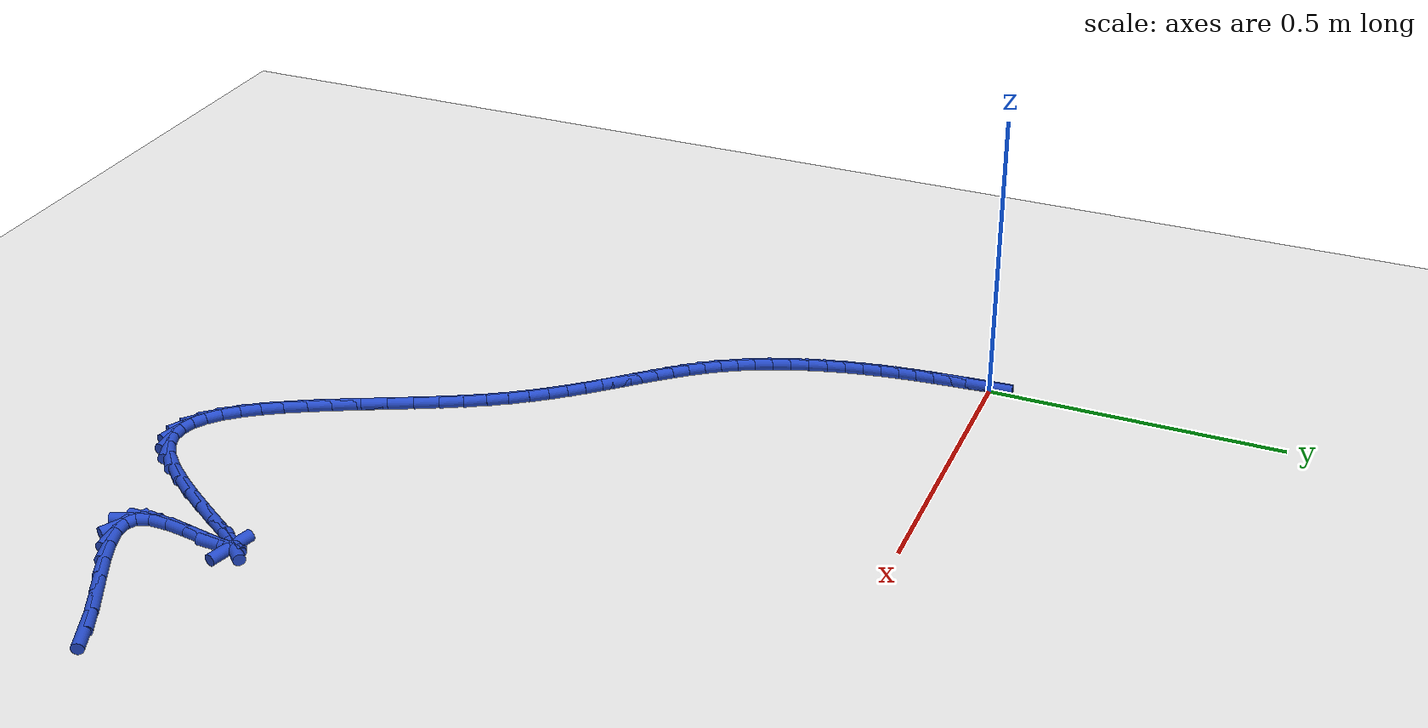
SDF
<sdf version="1.6">
 <world name="default">
  <model name="ground_plane">
   <static>1</static>
   <link name="link">
    <collision name="collision">
     <geometry><plane><normal>0 0 1</normal><size>100 100</size></plane></geometry>
     <surface><friction><ode><mu>100</mu><mu2>50</mu2></ode></friction></surface>
    </collision>
    <visual name="visual">
     <cast_shadows>0</cast_shadows>
     <geometry><plane><normal>0 0 1</normal><size>100 100</size></plane></geometry>
     <material>
      <script><uri>file://media/materials/scripts/gazebo.material</uri><name>Gazebo/WhiteGlow</name></script>
     </material>
    </visual>
   </link>
  </model>
  <model name="line">
   <link name="link_0">
    <pose>2.8189256484623115e-17 1.3877787807814457e-17 0.01 0 1.57 -1.5020632470891158</pose>
    <collision name="collision">
     <geometry><cylinder><radius>0.01</radius><length>0.08</length></cylinder></geometry>
    </collision>
    <visual name="visual">
     <material>
      <script><name>Gazebo/Blue</name><uri>file://media/materials/scripts/gazebo.material</uri></script>
     </material>
     <geometry><cylinder><radius>0.01</radius><length>0.08</length></cylinder></geometry>
    </visual>
   </link>
   <link name="link_212">
    <pose>1.1238979287958926 -1.007894811086296 0.01 0 1.57 0.43036871004464033</pose>
    <collision name="collision">
     <geometry><cylinder><radius>0.01</radius><length>0.08</length></cylinder></geometry>
    </collision>
    <visual name="visual">
     <material>
      <script><name>Gazebo/Blue</name><uri>file://media/materials/scripts/gazebo.material</uri></script>
     </material>
     <geometry><cylinder><radius>0.01</radius><length>0.08</length></cylinder></geometry>
    </visual>
   </link>
   <link name="link_213">
    <pose>1.088352463980338 -1.0242125738148604 0.01 0 1.57 0.494246814691259</pose>
    <collision name="collision">
     <geometry><cylinder><radius>0.01</radius><length>0.08</length></cylinder></geometry>
    </collision>
    <visual name="visual">
     <material>
      <script><name>Gazebo/Blue</name><uri>file://media/materials/scripts/gazebo.material</uri></script>
     </material>
     <geometry><cylinder><radius>0.01</radius><length>0.08</length></cylinder></geometry>
    </visual>
   </link>
   <link name="link_214">
    <pose>1.0505597934532582 -1.0445773663550415 0.01 0 1.57 0.5174143420459816</pose>
    <collision name="collision">
     <geometry><cylinder><radius>0.01</radius><length>0.08</length></cylinder></geometry>
    </collision>
    <visual name="visual">
     <material>
      <script><name>Gazebo/Blue</name><uri>file://media/materials/scripts/gazebo.material</uri></script>
     </material>
     <geometry><cylinder><radius>0.01</radius><length>0.08</length></cylinder></geometry>
    </visual>
   </link>
   <link name="link_215">
    <pose>1.0121630869963125 -1.0664302217977657 0.01 0 1.57 0.5076658391765082</pose>
    <collision name="collision">
     <geometry><cylinder><radius>0.01</radius><length>0.08</length></cylinder></geometry>
    </collision>
    <visual name="visual">
     <material>
      <script><name>Gazebo/Blue</name><uri>file://media/materials/scripts/gazebo.material</uri></script>
     </material>
     <geometry><cylinder><radius>0.01</radius><length>0.08</length></cylinder></geometry>
    </visual>
   </link>
   <link name="link_216">
    <pose>0.9748055143911605 -1.0872121732339584 0.01 0 1.57 0.4593575000958558</pose>
    <collision name="collision">
     <geometry><cylinder><radius>0.01</radius><length>0.08</length></cylinder></geometry>
    </collision>
    <visual name="visual">
     <material>
      <script><name>Gazebo/Blue</name><uri>file://media/materials/scripts/gazebo.material</uri></script>
     </material>
     <geometry><cylinder><radius>0.01</radius><length>0.08</length></cylinder></geometry>
    </visual>
   </link>
   <link name="link_217">
    <pose>0.9401302454194594 -1.1043642537545448 0.01 0 1.57 0.3466436278267867</pose>
    <collision name="collision">
     <geometry><cylinder><radius>0.01</radius><length>0.08</length></cylinder></geometry>
    </collision>
    <visual name="visual">
     <material>
      <script><name>Gazebo/Blue</name><uri>file://media/materials/scripts/gazebo.material</uri></script>
     </material>
     <geometry><cylinder><radius>0.01</radius><length>0.08</length></cylinder></geometry>
    </visual>
   </link>
   <link name="link_218">
    <pose>0.9097804498628714 -1.1153274964504505 0.01 0 1.57 0.09061796990768746</pose>
    <collision name="collision">
     <geometry><cylinder><radius>0.01</radius><length>0.08</length></cylinder></geometry>
    </collision>
    <visual name="visual">
     <material>
      <script><name>Gazebo/Blue</name><uri>file://media/materials/scripts/gazebo.material</uri></script>
     </material>
     <geometry><cylinder><radius>0.01</radius><length>0.08</length></cylinder></geometry>
    </visual>
   </link>
   <link name="link_219">
    <pose>0.885399297503054 -1.1175429344126009 0.01 0 1.57 -0.49678882625008863</pose>
    <collision name="collision">
     <geometry><cylinder><radius>0.01</radius><length>0.08</length></cylinder></geometry>
    </collision>
    <visual name="visual">
     <material>
      <script><name>Gazebo/Blue</name><uri>file://media/materials/scripts/gazebo.material</uri></script>
     </material>
     <geometry><cylinder><radius>0.01</radius><length>0.08</length></cylinder></geometry>
    </visual>
   </link>
   <link name="link_220">
    <pose>0.8686299581216668 -1.108451600731922 0.01 0 1.57 -1.238250292860179</pose>
    <collision name="collision">
     <geometry><cylinder><radius>0.01</radius><length>0.08</length></cylinder></geometry>
    </collision>
    <visual name="visual">
     <material>
      <script><name>Gazebo/Blue</name><uri>file://media/materials/scripts/gazebo.material</uri></script>
     </material>
     <geometry><cylinder><radius>0.01</radius><length>0.08</length></cylinder></geometry>
    </visual>
   </link>
   <link name="link_221">
    <pose>0.8608606900412414 -1.0859562454693739 0.01 0 1.57 -1.5676855676562</pose>
    <collision name="collision">
     <geometry><cylinder><radius>0.01</radius><length>0.08</length></cylinder></geometry>
    </collision>
    <visual name="visual">
     <material>
      <script><name>Gazebo/Blue</name><uri>file://media/materials/scripts/gazebo.material</uri></script>
     </material>
     <geometry><cylinder><radius>0.01</radius><length>0.08</length></cylinder></geometry>
    </visual>
   </link>
   <link name="link_222">
    <pose>0.8607578279452137 -1.0528897945972375 0.01 0 1.57 1.4502300214684398</pose>
    <collision name="collision">
     <geometry><cylinder><radius>0.01</radius><length>0.08</length></cylinder></geometry>
    </collision>
    <visual name="visual">
     <material>
      <script><name>Gazebo/Blue</name><uri>file://media/materials/scripts/gazebo.material</uri></script>
     </material>
     <geometry><cylinder><radius>0.01</radius><length>0.08</length></cylinder></geometry>
    </visual>
   </link>
   <link name="link_223">
    <pose>0.8653398565116729 -1.0150698979371815 0.01 0 1.57 1.4018495770385866</pose>
    <collision name="collision">
     <geometry><cylinder><radius>0.01</radius><length>0.08</length></cylinder></geometry>
    </collision>
    <visual name="visual">
     <material>
      <script><name>Gazebo/Blue</name><uri>file://media/materials/scripts/gazebo.material</uri></script>
     </material>
     <geometry><cylinder><radius>0.01</radius><length>0.08</length></cylinder></geometry>
    </visual>
   </link>
   <link name="link_224">
    <pose>0.8716022734945462 -0.9783558411518526 0.01 0 1.57 1.4062970038165252</pose>
    <collision name="collision">
     <geometry><cylinder><radius>0.01</radius><length>0.08</length></cylinder></geometry>
    </collision>
    <visual name="visual">
     <material>
      <script><name>Gazebo/Blue</name><uri>file://media/materials/scripts/gazebo.material</uri></script>
     </material>
     <geometry><cylinder><radius>0.01</radius><length>0.08</length></cylinder></geometry>
    </visual>
   </link>
   <link name="link_225">
    <pose>0.8765405766477591 -0.9486069099038953 0.01 0 1.57 1.5338158175267067</pose>
    <collision name="collision">
     <geometry><cylinder><radius>0.01</radius><length>0.08</length></cylinder></geometry>
    </collision>
    <visual name="visual">
     <material>
      <script><name>Gazebo/Blue</name><uri>file://media/materials/scripts/gazebo.material</uri></script>
     </material>
     <geometry><cylinder><radius>0.01</radius><length>0.08</length></cylinder></geometry>
    </visual>
   </link>
   <link name="link_226">
    <pose>0.8771682490501147 -0.9316415878321018 0.01 0 1.57 -0.2554057249962334</pose>
    <collision name="collision">
     <geometry><cylinder><radius>0.01</radius><length>0.08</length></cylinder></geometry>
    </collision>
    <visual name="visual">
     <material>
      <script><name>Gazebo/Blue</name><uri>file://media/materials/scripts/gazebo.material</uri></script>
     </material>
     <geometry><cylinder><radius>0.01</radius><length>0.08</length></cylinder></geometry>
    </visual>
   </link>
   <link name="link_227">
    <pose>0.8718341794432947 -0.9302488189875036 0.01 0 1.57 0.8379449119661329</pose>
    <collision name="collision">
     <geometry><cylinder><radius>0.01</radius><length>0.08</length></cylinder></geometry>
    </collision>
    <visual name="visual">
     <material>
      <script><name>Gazebo/Blue</name><uri>file://media/materials/scripts/gazebo.material</uri></script>
     </material>
     <geometry><cylinder><radius>0.01</radius><length>0.08</length></cylinder></geometry>
    </visual>
   </link>
   <link name="link_228">
    <pose>0.8611197306306414 -0.9421528927349598 0.01 0 1.57 0.972414688557636</pose>
    <collision name="collision">
     <geometry><cylinder><radius>0.01</radius><length>0.08</length></cylinder></geometry>
    </collision>
    <visual name="visual">
     <material>
      <script><name>Gazebo/Blue</name><uri>file://media/materials/scripts/gazebo.material</uri></script>
     </material>
     <geometry><cylinder><radius>0.01</radius><length>0.08</length></cylinder></geometry>
    </visual>
   </link>
   <link name="link_229">
    <pose>0.8458186532984966 -0.9645962691964284 0.01 0 1.57 1.00737616184237</pose>
    <collision name="collision">
     <geometry><cylinder><radius>0.01</radius><length>0.08</length></cylinder></geometry>
    </collision>
    <visual name="visual">
     <material>
      <script><name>Gazebo/Blue</name><uri>file://media/materials/scripts/gazebo.material</uri></script>
     </material>
     <geometry><cylinder><radius>0.01</radius><length>0.08</length></cylinder></geometry>
    </visual>
   </link>
   <link name="link_230">
    <pose>0.8267246981332023 -0.9948214084938679 0.01 0 1.57 1.010928483295117</pose>
    <collision name="collision">
     <geometry><cylinder><radius>0.01</radius><length>0.08</length></cylinder></geometry>
    </collision>
    <visual name="visual">
     <material>
      <script><name>Gazebo/Blue</name><uri>file://media/materials/scripts/gazebo.material</uri></script>
     </material>
     <geometry><cylinder><radius>0.01</radius><length>0.08</length></cylinder></geometry>
    </visual>
   </link>
   <link name="link_231">
    <pose>0.8046316158211007 -1.0300707707492367 0.01 0 1.57 0.9960525177055873</pose>
    <collision name="collision">
     <geometry><cylinder><radius>0.01</radius><length>0.08</length></cylinder></geometry>
    </collision>
    <visual name="visual">
     <material>
      <script><name>Gazebo/Blue</name><uri>file://media/materials/scripts/gazebo.material</uri></script>
     </material>
     <geometry><cylinder><radius>0.01</radius><length>0.08</length></cylinder></geometry>
    </visual>
   </link>
   <link name="link_232">
    <pose>0.7803331570485339 -1.0675868160844932 0.01 0 1.57 0.9638424083240372</pose>
    <collision name="collision">
     <geometry><cylinder><radius>0.01</radius><length>0.08</length></cylinder></geometry>
    </collision>
    <visual name="visual">
     <material>
      <script><name>Gazebo/Blue</name><uri>file://media/materials/scripts/gazebo.material</uri></script>
     </material>
     <geometry><cylinder><radius>0.01</radius><length>0.08</length></cylinder></geometry>
    </visual>
   </link>
   <link name="link_233">
    <pose>0.7546230725018439 -1.104612004621596 0.01 0 1.57 0.9087003065310378</pose>
    <collision name="collision">
     <geometry><cylinder><radius>0.01</radius><length>0.08</length></cylinder></geometry>
    </collision>
    <visual name="visual">
     <material>
      <script><name>Gazebo/Blue</name><uri>file://media/materials/scripts/gazebo.material</uri></script>
     </material>
     <geometry><cylinder><radius>0.01</radius><length>0.08</length></cylinder></geometry>
    </visual>
   </link>
   <link name="link_234">
    <pose>0.7282951128673719 -1.1383887964825035 0.01 0 1.57 0.8154092360759142</pose>
    <collision name="collision">
     <geometry><cylinder><radius>0.01</radius><length>0.08</length></cylinder></geometry>
    </collision>
    <visual name="visual">
     <material>
      <script><name>Gazebo/Blue</name><uri>file://media/materials/scripts/gazebo.material</uri></script>
     </material>
     <geometry><cylinder><radius>0.01</radius><length>0.08</length></cylinder></geometry>
    </visual>
   </link>
   <link name="link_235">
    <pose>0.7021430288314621 -1.1661596517891735 0.01 0 1.57 0.650923560749037</pose>
    <collision name="collision">
     <geometry><cylinder><radius>0.01</radius><length>0.08</length></cylinder></geometry>
    </collision>
    <visual name="visual">
     <material>
      <script><name>Gazebo/Blue</name><uri>file://media/materials/scripts/gazebo.material</uri></script>
     </material>
     <geometry><cylinder><radius>0.01</radius><length>0.08</length></cylinder></geometry>
    </visual>
   </link>
   <link name="link_236">
    <pose>0.6769057157996979 -1.1853819722744559 0.01 0 1.57 0.40097356407191176</pose>
    <collision name="collision">
     <geometry><cylinder><radius>0.01</radius><length>0.08</length></cylinder></geometry>
    </collision>
    <visual name="visual">
     <material>
      <script><name>Gazebo/Blue</name><uri>file://media/materials/scripts/gazebo.material</uri></script>
     </material>
     <geometry><cylinder><radius>0.01</radius><length>0.08</length></cylinder></geometry>
    </visual>
   </link>
   <link name="link_237">
    <pose>0.6527878157955735 -1.1956065457770744 0.01 0 1.57 0.08456609748767416</pose>
    <collision name="collision">
     <geometry><cylinder><radius>0.01</radius><length>0.08</length></cylinder></geometry>
    </collision>
    <visual name="visual">
     <material>
      <script><name>Gazebo/Blue</name><uri>file://media/materials/scripts/gazebo.material</uri></script>
     </material>
     <geometry><cylinder><radius>0.01</radius><length>0.08</length></cylinder></geometry>
    </visual>
   </link>
   <link name="link_238">
    <pose>0.6296927946604237 -1.1975642706531289 0.01 0 1.57 -0.24591039448110066</pose>
    <collision name="collision">
     <geometry><cylinder><radius>0.01</radius><length>0.08</length></cylinder></geometry>
    </collision>
    <visual name="visual">
     <material>
      <script><name>Gazebo/Blue</name><uri>file://media/materials/scripts/gazebo.material</uri></script>
     </material>
     <geometry><cylinder><radius>0.01</radius><length>0.08</length></cylinder></geometry>
    </visual>
   </link>
   <link name="link_239">
    <pose>0.6075207352062348 -1.1919993011160963 0.01 0 1.57 -0.5242186127401407</pose>
    <collision name="collision">
     <geometry><cylinder><radius>0.01</radius><length>0.08</length></cylinder></geometry>
    </collision>
    <visual name="visual">
     <material>
      <script><name>Gazebo/Blue</name><uri>file://media/materials/scripts/gazebo.material</uri></script>
     </material>
     <geometry><cylinder><radius>0.01</radius><length>0.08</length></cylinder></geometry>
    </visual>
   </link>
   <link name="link_240">
    <pose>0.5861717202449924 -1.179655791379453 0.01 0 1.57 -0.727826626812564</pose>
    <collision name="collision">
     <geometry><cylinder><radius>0.01</radius><length>0.08</length></cylinder></geometry>
    </collision>
    <visual name="visual">
     <material>
      <script><name>Gazebo/Blue</name><uri>file://media/materials/scripts/gazebo.material</uri></script>
     </material>
     <geometry><cylinder><radius>0.01</radius><length>0.08</length></cylinder></geometry>
    </visual>
   </link>
   <link name="link_241">
    <pose>0.5655458325886825 -1.1612778956566756 0.01 0 1.57 -0.8691355396718144</pose>
    <collision name="collision">
     <geometry><cylinder><radius>0.01</radius><length>0.08</length></cylinder></geometry>
    </collision>
    <visual name="visual">
     <material>
      <script><name>Gazebo/Blue</name><uri>file://media/materials/scripts/gazebo.material</uri></script>
     </material>
     <geometry><cylinder><radius>0.01</radius><length>0.08</length></cylinder></geometry>
    </visual>
   </link>
   <link name="link_242">
    <pose>0.5455431550492909 -1.1376097681612414 0.01 0 1.57 -0.9665352756108037</pose>
    <collision name="collision">
     <geometry><cylinder><radius>0.01</radius><length>0.08</length></cylinder></geometry>
    </collision>
    <visual name="visual">
     <material>
      <script><name>Gazebo/Blue</name><uri>file://media/materials/scripts/gazebo.material</uri></script>
     </material>
     <geometry><cylinder><radius>0.01</radius><length>0.08</length></cylinder></geometry>
    </visual>
   </link>
   <link name="link_243">
    <pose>0.5260637704388028 -1.1093955631066255 0.01 0 1.57 -1.0339135002098072</pose>
    <collision name="collision">
     <geometry><cylinder><radius>0.01</radius><length>0.08</length></cylinder></geometry>
    </collision>
    <visual name="visual">
     <material>
      <script><name>Gazebo/Blue</name><uri>file://media/materials/scripts/gazebo.material</uri></script>
     </material>
     <geometry><cylinder><radius>0.01</radius><length>0.08</length></cylinder></geometry>
    </visual>
   </link>
   <link name="link_244">
    <pose>0.5070077615692055 -1.0773794347063064 0.01 0 1.57 -1.0802515852547034</pose>
    <collision name="collision">
     <geometry><cylinder><radius>0.01</radius><length>0.08</length></cylinder></geometry>
    </collision>
    <visual name="visual">
     <material>
      <script><name>Gazebo/Blue</name><uri>file://media/materials/scripts/gazebo.material</uri></script>
     </material>
     <geometry><cylinder><radius>0.01</radius><length>0.08</length></cylinder></geometry>
    </visual>
   </link>
   <link name="link_245">
    <pose>0.4882752112524841 -1.0423055371737604 0.01 0 1.57 -1.1111096594468888</pose>
    <collision name="collision">
     <geometry><cylinder><radius>0.01</radius><length>0.08</length></cylinder></geometry>
    </collision>
    <visual name="visual">
     <material>
      <script><name>Gazebo/Blue</name><uri>file://media/materials/scripts/gazebo.material</uri></script>
     </material>
     <geometry><cylinder><radius>0.01</radius><length>0.08</length></cylinder></geometry>
    </visual>
   </link>
   <link name="link_246">
    <pose>0.46976620230062444 -1.0049180247224634 0.01 0 1.57 -1.1298469869989984</pose>
    <collision name="collision">
     <geometry><cylinder><radius>0.01</radius><length>0.08</length></cylinder></geometry>
    </collision>
    <visual name="visual">
     <material>
      <script><name>Gazebo/Blue</name><uri>file://media/materials/scripts/gazebo.material</uri></script>
     </material>
     <geometry><cylinder><radius>0.01</radius><length>0.08</length></cylinder></geometry>
    </visual>
   </link>
   <link name="link_247">
    <pose>0.4513808175256125 -0.9659610515658932 0.01 0 1.57 -1.1383755864301908</pose>
    <collision name="collision">
     <geometry><cylinder><radius>0.01</radius><length>0.08</length></cylinder></geometry>
    </collision>
    <visual name="visual">
     <material>
      <script><name>Gazebo/Blue</name><uri>file://media/materials/scripts/gazebo.material</uri></script>
     </material>
     <geometry><cylinder><radius>0.01</radius><length>0.08</length></cylinder></geometry>
    </visual>
   </link>
   <link name="link_248">
    <pose>0.433019139739434 -0.9261787719175252 0.01 0 1.57 -1.1375744452298269</pose>
    <collision name="collision">
     <geometry><cylinder><radius>0.01</radius><length>0.08</length></cylinder></geometry>
    </collision>
    <visual name="visual">
     <material>
      <script><name>Gazebo/Blue</name><uri>file://media/materials/scripts/gazebo.material</uri></script>
     </material>
     <geometry><cylinder><radius>0.01</radius><length>0.08</length></cylinder></geometry>
    </visual>
   </link>
   <link name="link_249">
    <pose>0.41458125175407495 -0.8863153399908369 0.01 0 1.57 -1.1274768122839982</pose>
    <collision name="collision">
     <geometry><cylinder><radius>0.01</radius><length>0.08</length></cylinder></geometry>
    </collision>
    <visual name="visual">
     <material>
      <script><name>Gazebo/Blue</name><uri>file://media/materials/scripts/gazebo.material</uri></script>
     </material>
     <geometry><cylinder><radius>0.01</radius><length>0.08</length></cylinder></geometry>
    </visual>
   </link>
   <link name="link_250">
    <pose>0.39596723638152115 -0.8471149099993046 0.01 0 1.57 -1.1072879474681705</pose>
    <collision name="collision">
     <geometry><cylinder><radius>0.01</radius><length>0.08</length></cylinder></geometry>
    </collision>
    <visual name="visual">
     <material>
      <script><name>Gazebo/Blue</name><uri>file://media/materials/scripts/gazebo.material</uri></script>
     </material>
     <geometry><cylinder><radius>0.01</radius><length>0.08</length></cylinder></geometry>
    </visual>
   </link>
   <link name="link_251">
    <pose>0.37707717643375843 -0.8093216361564052 0.01 0 1.57 -1.0752425796358762</pose>
    <collision name="collision">
     <geometry><cylinder><radius>0.01</radius><length>0.08</length></cylinder></geometry>
    </collision>
    <visual name="visual">
     <material>
      <script><name>Gazebo/Blue</name><uri>file://media/materials/scripts/gazebo.material</uri></script>
     </material>
     <geometry><cylinder><radius>0.01</radius><length>0.08</length></cylinder></geometry>
    </visual>
   </link>
   <link name="link_252">
    <pose>0.3578111547227722 -0.7736796726756141 0.01 0 1.57 -1.031388183708308</pose>
    <collision name="collision">
     <geometry><cylinder><radius>0.01</radius><length>0.08</length></cylinder></geometry>
    </collision>
    <visual name="visual">
     <material>
      <script><name>Gazebo/Blue</name><uri>file://media/materials/scripts/gazebo.material</uri></script>
     </material>
     <geometry><cylinder><radius>0.01</radius><length>0.08</length></cylinder></geometry>
    </visual>
   </link>
   <link name="link_253">
    <pose>0.3381048978745235 -0.7407604927565488 0.01 0 1.57 -0.9866176304472384</pose>
    <collision name="collision">
     <geometry><cylinder><radius>0.01</radius><length>0.08</length></cylinder></geometry>
    </collision>
    <visual name="visual">
     <material>
      <script><name>Gazebo/Blue</name><uri>file://media/materials/scripts/gazebo.material</uri></script>
     </material>
     <geometry><cylinder><radius>0.01</radius><length>0.08</length></cylinder></geometry>
    </visual>
   </link>
   <link name="link_254">
    <pose>0.3180426034166043 -0.7104162833338497 0.01 0 1.57 -0.9453597531325579</pose>
    <collision name="collision">
     <geometry><cylinder><radius>0.01</radius><length>0.08</length></cylinder></geometry>
    </collision>
    <visual name="visual">
     <material>
      <script><name>Gazebo/Blue</name><uri>file://media/materials/scripts/gazebo.material</uri></script>
     </material>
     <geometry><cylinder><radius>0.01</radius><length>0.08</length></cylinder></geometry>
    </visual>
   </link>
   <link name="link_255">
    <pose>0.297747120953659 -0.6823119764132125 0.01 0 1.57 -0.9090768437116961</pose>
    <collision name="collision">
     <geometry><cylinder><radius>0.01</radius><length>0.08</length></cylinder></geometry>
    </collision>
    <visual name="visual">
     <material>
      <script><name>Gazebo/Blue</name><uri>file://media/materials/scripts/gazebo.material</uri></script>
     </material>
     <geometry><cylinder><radius>0.01</radius><length>0.08</length></cylinder></geometry>
    </visual>
   </link>
   <link name="link_256">
    <pose>0.2773413001817795 -0.6561125035573008 0.01 0 1.57 -0.8792159831886435</pose>
    <collision name="collision">
     <geometry><cylinder><radius>0.01</radius><length>0.08</length></cylinder></geometry>
    </collision>
    <visual name="visual">
     <material>
      <script><name>Gazebo/Blue</name><uri>file://media/materials/scripts/gazebo.material</uri></script>
     </material>
     <geometry><cylinder><radius>0.01</radius><length>0.08</length></cylinder></geometry>
    </visual>
   </link>
   <link name="link_257">
    <pose>0.2569479907970579 -0.6314827963287785 0.01 0 1.57 -0.8571385034513981</pose>
    <collision name="collision">
     <geometry><cylinder><radius>0.01</radius><length>0.08</length></cylinder></geometry>
    </collision>
    <visual name="visual">
     <material>
      <script><name>Gazebo/Blue</name><uri>file://media/materials/scripts/gazebo.material</uri></script>
     </material>
     <geometry><cylinder><radius>0.01</radius><length>0.08</length></cylinder></geometry>
    </visual>
   </link>
   <link name="link_258">
    <pose>0.23669004249558623 -0.6080877862903097 0.01 0 1.57 -0.8440585610646308</pose>
    <collision name="collision">
     <geometry><cylinder><radius>0.01</radius><length>0.08</length></cylinder></geometry>
    </collision>
    <visual name="visual">
     <material>
      <script><name>Gazebo/Blue</name><uri>file://media/materials/scripts/gazebo.material</uri></script>
     </material>
     <geometry><cylinder><radius>0.01</radius><length>0.08</length></cylinder></geometry>
    </visual>
   </link>
   <link name="link_259">
    <pose>0.2166903049734567 -0.5855924050045584 0.01 0 1.57 -0.8409887671803831</pose>
    <collision name="collision">
     <geometry><cylinder><radius>0.01</radius><length>0.08</length></cylinder></geometry>
    </collision>
    <visual name="visual">
     <material>
      <script><name>Gazebo/Blue</name><uri>file://media/materials/scripts/gazebo.material</uri></script>
     </material>
     <geometry><cylinder><radius>0.01</radius><length>0.08</length></cylinder></geometry>
    </visual>
   </link>
   <link name="link_260">
    <pose>0.1970716279267613 -0.5636615840341883 0.01 0 1.57 -0.848684668788237</pose>
    <collision name="collision">
     <geometry><cylinder><radius>0.01</radius><length>0.08</length></cylinder></geometry>
    </collision>
    <visual name="visual">
     <material>
      <script><name>Gazebo/Blue</name><uri>file://media/materials/scripts/gazebo.material</uri></script>
     </material>
     <geometry><cylinder><radius>0.01</radius><length>0.08</length></cylinder></geometry>
    </visual>
   </link>
   <link name="link_261">
    <pose>0.1779568610515916 -0.5419602549418631 0.01 0 1.57 -0.867577864552451</pose>
    <collision name="collision">
     <geometry><cylinder><radius>0.01</radius><length>0.08</length></cylinder></geometry>
    </collision>
    <visual name="visual">
     <material>
      <script><name>Gazebo/Blue</name><uri>file://media/materials/scripts/gazebo.material</uri></script>
     </material>
     <geometry><cylinder><radius>0.01</radius><length>0.08</length></cylinder></geometry>
    </visual>
   </link>
   <link name="link_262">
    <pose>0.1594688540440408 -0.5201533492902477 0.01 0 1.57 -0.8976922082672683</pose>
    <collision name="collision">
     <geometry><cylinder><radius>0.01</radius><length>0.08</length></cylinder></geometry>
    </collision>
    <visual name="visual">
     <material>
      <script><name>Gazebo/Blue</name><uri>file://media/materials/scripts/gazebo.material</uri></script>
     </material>
     <geometry><cylinder><radius>0.01</radius><length>0.08</length></cylinder></geometry>
    </visual>
   </link>
   <link name="link_263">
    <pose>0.14173045660020045 -0.49790579864200546 0.01 0 1.57 -0.9385501194969301</pose>
    <collision name="collision">
     <geometry><cylinder><radius>0.01</radius><length>0.08</length></cylinder></geometry>
    </collision>
    <visual name="visual">
     <material>
      <script><name>Gazebo/Blue</name><uri>file://media/materials/scripts/gazebo.material</uri></script>
     </material>
     <geometry><cylinder><radius>0.01</radius><length>0.08</length></cylinder></geometry>
    </visual>
   </link>
   <link name="link_264">
    <pose>0.12486451841616258 -0.4748825345598005 0.01 0 1.57 -0.9890946080056733</pose>
    <collision name="collision">
     <geometry><cylinder><radius>0.01</radius><length>0.08</length></cylinder></geometry>
    </collision>
    <visual name="visual">
     <material>
      <script><name>Gazebo/Blue</name><uri>file://media/materials/scripts/gazebo.material</uri></script>
     </material>
     <geometry><cylinder><radius>0.01</radius><length>0.08</length></cylinder></geometry>
    </visual>
   </link>
   <link name="link_265">
    <pose>0.10899388918801932 -0.4507484886062965 0.01 0 1.57 -1.0475822758607995</pose>
    <collision name="collision">
     <geometry><cylinder><radius>0.01</radius><length>0.08</length></cylinder></geometry>
    </collision>
    <visual name="visual">
     <material>
      <script><name>Gazebo/Blue</name><uri>file://media/materials/scripts/gazebo.material</uri></script>
     </material>
     <geometry><cylinder><radius>0.01</radius><length>0.08</length></cylinder></geometry>
    </visual>
   </link>
   <link name="link_266">
    <pose>0.09424061485135869 -0.4251723489429676 0.01 0 1.57 -1.1071574789428034</pose>
    <collision name="collision">
     <geometry><cylinder><radius>0.01</radius><length>0.08</length></cylinder></geometry>
    </collision>
    <visual name="visual">
     <material>
      <script><name>Gazebo/Blue</name><uri>file://media/materials/scripts/gazebo.material</uri></script>
     </material>
     <geometry><cylinder><radius>0.01</radius><length>0.08</length></cylinder></geometry>
    </visual>
   </link>
   <link name="link_267">
    <pose>0.08067861207381892 -0.3980477492838621 0.01 0 1.57 -1.1603718266495895</pose>
    <collision name="collision">
     <geometry><cylinder><radius>0.01</radius><length>0.08</length></cylinder></geometry>
    </collision>
    <visual name="visual">
     <material>
      <script><name>Gazebo/Blue</name><uri>file://media/materials/scripts/gazebo.material</uri></script>
     </material>
     <geometry><cylinder><radius>0.01</radius><length>0.08</length></cylinder></geometry>
    </visual>
   </link>
   <link name="link_268">
    <pose>0.06830725251334067 -0.369616730229572 0.01 0 1.57 -1.2079198996502418</pose>
    <collision name="collision">
     <geometry><cylinder><radius>0.01</radius><length>0.08</length></cylinder></geometry>
    </collision>
    <visual name="visual">
     <material>
      <script><name>Gazebo/Blue</name><uri>file://media/materials/scripts/gazebo.material</uri></script>
     </material>
     <geometry><cylinder><radius>0.01</radius><length>0.08</length></cylinder></geometry>
    </visual>
   </link>
   <link name="link_269">
    <pose>0.05711950181935312 -0.3401512726475126 0.01 0 1.57 -1.2509762219488594</pose>
    <collision name="collision">
     <geometry><cylinder><radius>0.01</radius><length>0.08</length></cylinder></geometry>
    </collision>
    <visual name="visual">
     <material>
      <script><name>Gazebo/Blue</name><uri>file://media/materials/scripts/gazebo.material</uri></script>
     </material>
     <geometry><cylinder><radius>0.01</radius><length>0.08</length></cylinder></geometry>
    </visual>
   </link>
   <link name="link_270">
    <pose>0.04710832564128498 -0.30992335740509835 0.01 0 1.57 -1.2905428905543643</pose>
    <collision name="collision">
     <geometry><cylinder><radius>0.01</radius><length>0.08</length></cylinder></geometry>
    </collision>
    <visual name="visual">
     <material>
      <script><name>Gazebo/Blue</name><uri>file://media/materials/scripts/gazebo.material</uri></script>
     </material>
     <geometry><cylinder><radius>0.01</radius><length>0.08</length></cylinder></geometry>
    </visual>
   </link>
   <link name="link_271">
    <pose>0.038266689628566025 -0.27920496536974676 0.01 0 1.57 -1.3274943929224925</pose>
    <collision name="collision">
     <geometry><cylinder><radius>0.01</radius><length>0.08</length></cylinder></geometry>
    </collision>
    <visual name="visual">
     <material>
      <script><name>Gazebo/Blue</name><uri>file://media/materials/scripts/gazebo.material</uri></script>
     </material>
     <geometry><cylinder><radius>0.01</radius><length>0.08</length></cylinder></geometry>
    </visual>
   </link>
   <link name="link_272">
    <pose>0.030587559430625 -0.24826807740887216 0.01 0 1.57 -1.3626196318993733</pose>
    <collision name="collision">
     <geometry><cylinder><radius>0.01</radius><length>0.08</length></cylinder></geometry>
    </collision>
    <visual name="visual">
     <material>
      <script><name>Gazebo/Blue</name><uri>file://media/materials/scripts/gazebo.material</uri></script>
     </material>
     <geometry><cylinder><radius>0.01</radius><length>0.08</length></cylinder></geometry>
    </visual>
   </link>
   <link name="link_273">
    <pose>0.02406377258931659 -0.2173843523140422 0.01 0 1.57 -1.3959038308420957</pose>
    <collision name="collision">
     <geometry><cylinder><radius>0.01</radius><length>0.08</length></cylinder></geometry>
    </collision>
    <visual name="visual">
     <material>
      <script><name>Gazebo/Blue</name><uri>file://media/materials/scripts/gazebo.material</uri></script>
     </material>
     <geometry><cylinder><radius>0.01</radius><length>0.08</length></cylinder></geometry>
    </visual>
   </link>
   <link name="link_274">
    <pose>0.018644832242582867 -0.18671650165070944 0.01 0 1.57 -1.4255140969677056</pose>
    <collision name="collision">
     <geometry><cylinder><radius>0.01</radius><length>0.08</length></cylinder></geometry>
    </collision>
    <visual name="visual">
     <material>
      <script><name>Gazebo/Blue</name><uri>file://media/materials/scripts/gazebo.material</uri></script>
     </material>
     <geometry><cylinder><radius>0.01</radius><length>0.08</length></cylinder></geometry>
    </visual>
   </link>
   <link name="link_275">
    <pose>0.014174056691472045 -0.15616027719278447 0.01 0 1.57 -1.450575336204238</pose>
    <collision name="collision">
     <geometry><cylinder><radius>0.01</radius><length>0.08</length></cylinder></geometry>
    </collision>
    <visual name="visual">
     <material>
      <script><name>Gazebo/Blue</name><uri>file://media/materials/scripts/gazebo.material</uri></script>
     </material>
     <geometry><cylinder><radius>0.01</radius><length>0.08</length></cylinder></geometry>
    </visual>
   </link>
   <link name="link_276">
    <pose>0.01047879876826238 -0.12557129185500243 0.01 0 1.57 -1.4706200655336759</pose>
    <collision name="collision">
     <geometry><cylinder><radius>0.01</radius><length>0.08</length></cylinder></geometry>
    </collision>
    <visual name="visual">
     <material>
      <script><name>Gazebo/Blue</name><uri>file://media/materials/scripts/gazebo.material</uri></script>
     </material>
     <geometry><cylinder><radius>0.01</radius><length>0.08</length></cylinder></geometry>
    </visual>
   </link>
   <link name="link_277">
    <pose>0.007386411305232112 -0.09480515855209816 0.01 0 1.57 -1.4853706450876365</pose>
    <collision name="collision">
     <geometry><cylinder><radius>0.01</radius><length>0.08</length></cylinder></geometry>
    </collision>
    <visual name="visual">
     <material>
      <script><name>Gazebo/Blue</name><uri>file://media/materials/scripts/gazebo.material</uri></script>
     </material>
     <geometry><cylinder><radius>0.01</radius><length>0.08</length></cylinder></geometry>
    </visual>
   </link>
   <link name="link_278">
    <pose>0.004724247134659481 -0.06371749019880656 0.01 0 1.57 -1.4947368566170949</pose>
    <collision name="collision">
     <geometry><cylinder><radius>0.01</radius><length>0.08</length></cylinder></geometry>
    </collision>
    <visual name="visual">
     <material>
      <script><name>Gazebo/Blue</name><uri>file://media/materials/scripts/gazebo.material</uri></script>
     </material>
     <geometry><cylinder><radius>0.01</radius><length>0.08</length></cylinder></geometry>
    </visual>
   </link>
   <link name="link_279">
    <pose>0.0023196590888226636 -0.03216389970986165 0.01 0 1.57 -1.4988010191476144</pose>
    <collision name="collision">
     <geometry><cylinder><radius>0.01</radius><length>0.08</length></cylinder></geometry>
    </collision>
    <visual name="visual">
     <material>
      <script><name>Gazebo/Blue</name><uri>file://media/materials/scripts/gazebo.material</uri></script>
     </material>
     <geometry><cylinder><radius>0.01</radius><length>0.08</length></cylinder></geometry>
    </visual>
   </link>
   <link name="link_280">
    <pose>4.5536491244391186e-17 -2.42861286636753e-16 0.01 0 1.57 -1.4977950564831124</pose>
    <collision name="collision">
     <geometry><cylinder><radius>0.01</radius><length>0.08</length></cylinder></geometry>
    </collision>
    <visual name="visual">
     <material>
      <script><name>Gazebo/Blue</name><uri>file://media/materials/scripts/gazebo.material</uri></script>
     </material>
     <geometry><cylinder><radius>0.01</radius><length>0.08</length></cylinder></geometry>
    </visual>
   </link>
  </model>
 </world>
</sdf>
